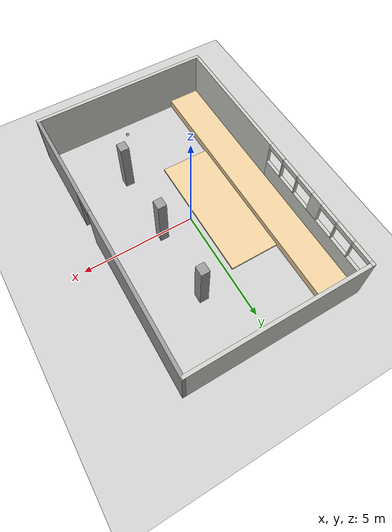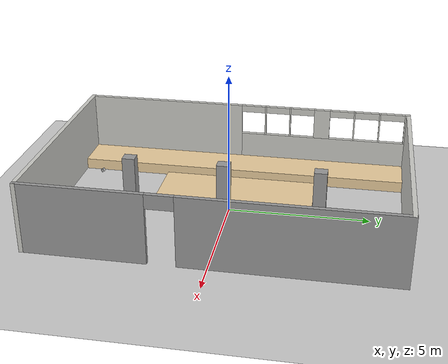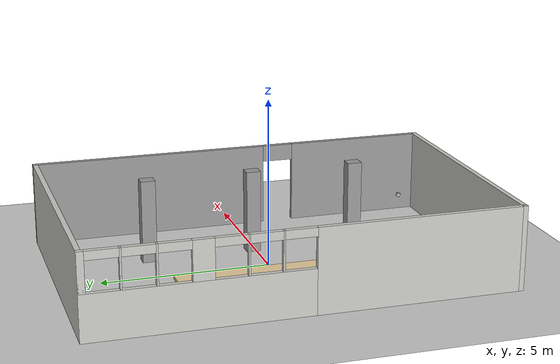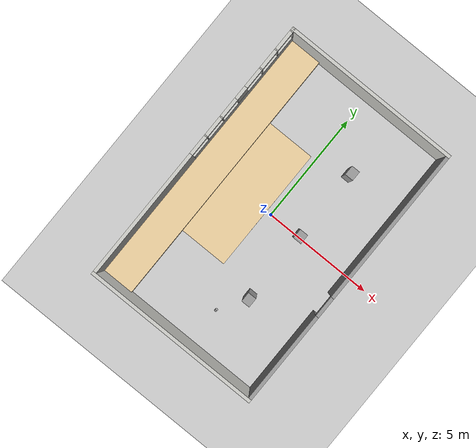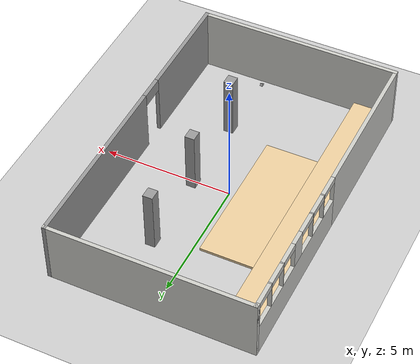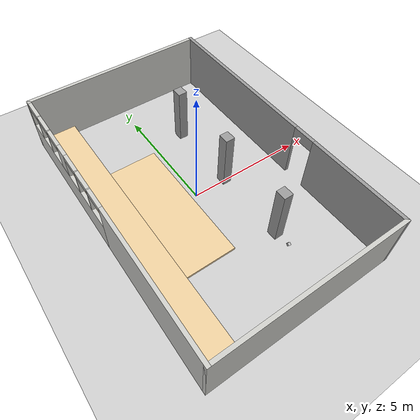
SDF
<sdf version="1.6">
 <world name="default">
  <light name="sun" type="directional">
   <pose>0 0 10 0 -0 0</pose>
   <diffuse>0.8 0.8 0.8 1</diffuse>
   <specular>0.1 0.1 0.1 1</specular>
   <attenuation>
    <range>1000</range>
    <constant>0.9</constant>
    <linear>0.01</linear>
    <quadratic>0.001</quadratic>
   </attenuation>
   <direction>-0.5 0.5 -1</direction>
  </light>
  <model name="ground_plane">
   <static>1</static>
   <link name="link">
    <collision name="collision">
     <geometry><plane><normal>0 0 1</normal><size>100 100</size></plane></geometry>
     <surface><friction><ode><mu>100</mu><mu2>50</mu2></ode></friction></surface>
    </collision>
    <visual name="visual">
     <cast_shadows>0</cast_shadows>
     <geometry><plane><normal>0 0 1</normal><size>100 100</size></plane></geometry>
     <material>
      <script><uri>file://media/materials/scripts/gazebo.material</uri><name>Gazebo/Grey</name></script>
     </material>
     <plugin name="panoramagrid" filename="libgazebo_hide_plugin.so"/>
    </visual>
   </link>
  </model>
  <gravity>0 0 -9.8</gravity>
  <magnetic_field>6e-06 2.3e-05 -4.2e-05</magnetic_field>
  <atmosphere type="adiabatic"/>
  <physics name="default_physics" default="0" type="ode">
   <max_step_size>0.001</max_step_size>
   <real_time_factor>1</real_time_factor>
   <real_time_update_rate>1000</real_time_update_rate>
  </physics>
  <scene><ambient>0.4 0.4 0.4 1</ambient><background>0.7 0.7 0.7 1</background><shadows>1</shadows></scene>
  <spherical_coordinates>
   <surface_model>EARTH_WGS84</surface_model>
   <latitude_deg>0</latitude_deg>
   <longitude_deg>0</longitude_deg>
   <elevation>0</elevation>
   <heading_deg>0</heading_deg>
  </spherical_coordinates>
  <model name="012">
   <pose>4e-06 -0 0 0 -0 1.57079</pose>
   <link name="Wall_0">
    <collision name="Wall_0_Collision">
     <geometry><box><size>8 0.15 2.5</size></box></geometry>
     <pose>0 0 1.25 0 -0 0</pose>
    </collision>
    <visual name="Wall_0_Visual">
     <pose>0 0 1.25 0 -0 0</pose>
     <geometry><box><size>8 0.15 2.5</size></box></geometry>
     <material>
      <script><uri>file://media/materials/scripts/gazebo.material</uri><name>Gazebo/CeilingTiled</name></script>
      <ambient>1 1 1 1</ambient>
     </material>
     <plugin name="panoramagrid" filename="libgazebo_hide_plugin.so"/>
    </visual>
    <pose>-6.175 0 0 0 -0 1.5708</pose>
   </link>
   <link name="Wall_1">
    <pose>0 3.925 0 0 -0 0</pose>
    <visual name="Wall_1_Visual_0">
     <pose>-3.19976 0 1.25 0 -0 0</pose>
     <geometry><box><size>6.10047 0.15 2.5</size></box></geometry>
     <material>
      <script><uri>file://media/materials/scripts/gazebo.material</uri><name>Gazebo/CeilingTiled</name></script>
      <ambient>1 1 1 1</ambient>
     </material>
     <plugin name="panoramagrid" filename="libgazebo_hide_plugin.so"/>
    </visual>
    <collision name="Wall_1_Collision_0">
     <geometry><box><size>6.10047 0.15 2.5</size></box></geometry>
     <pose>-3.19976 0 1.25 0 -0 0</pose>
    </collision>
    <visual name="Wall_1_Visual_1">
     <pose>3.05024 0 0.675 0 -0 0</pose>
     <geometry><box><size>6.39953 0.15 1.35</size></box></geometry>
     <material>
      <script><uri>file://media/materials/scripts/gazebo.material</uri><name>Gazebo/CeilingTiled</name></script>
      <ambient>1 1 1 1</ambient>
     </material>
     <plugin name="panoramagrid" filename="libgazebo_hide_plugin.so"/>
    </visual>
    <collision name="Wall_1_Collision_1">
     <geometry><box><size>6.39953 0.15 1.35</size></box></geometry>
     <pose>3.05024 0 0.675 0 -0 0</pose>
    </collision>
    <visual name="Wall_1_Visual_2">
     <pose>0.775327 0 1.925 0 -0 0</pose>
     <geometry><box><size>0.049707 0.15 1.15</size></box></geometry>
     <material>
      <script><uri>file://media/materials/scripts/gazebo.material</uri><name>Gazebo/CeilingTiled</name></script>
      <ambient>1 1 1 1</ambient>
     </material>
     <plugin name="panoramagrid" filename="libgazebo_hide_plugin.so"/>
    </visual>
    <collision name="Wall_1_Collision_2">
     <geometry><box><size>0.049707 0.15 1.15</size></box></geometry>
     <pose>0.775327 0 1.925 0 -0 0</pose>
    </collision>
    <visual name="Wall_1_Visual_3">
     <pose>1.7249 0 1.925 0 -0 0</pose>
     <geometry><box><size>0.049436 0.15 1.15</size></box></geometry>
     <material>
      <script><uri>file://media/materials/scripts/gazebo.material</uri><name>Gazebo/CeilingTiled</name></script>
      <ambient>1 1 1 1</ambient>
     </material>
     <plugin name="panoramagrid" filename="libgazebo_hide_plugin.so"/>
    </visual>
    <collision name="Wall_1_Collision_3">
     <geometry><box><size>0.049436 0.15 1.15</size></box></geometry>
     <pose>1.7249 0 1.925 0 -0 0</pose>
    </collision>
    <visual name="Wall_1_Visual_4">
     <pose>2.9496 0 1.925 0 -0 0</pose>
     <geometry><box><size>0.599959 0.15 1.15</size></box></geometry>
     <material>
      <script><uri>file://media/materials/scripts/gazebo.material</uri><name>Gazebo/CeilingTiled</name></script>
      <ambient>1 1 1 1</ambient>
     </material>
     <plugin name="panoramagrid" filename="libgazebo_hide_plugin.so"/>
    </visual>
    <collision name="Wall_1_Collision_4">
     <geometry><box><size>0.599959 0.15 1.15</size></box></geometry>
     <pose>2.9496 0 1.925 0 -0 0</pose>
    </collision>
    <visual name="Wall_1_Visual_5">
     <pose>4.17483 0 1.925 0 -0 0</pose>
     <geometry><box><size>0.050519 0.15 1.15</size></box></geometry>
     <material>
      <script><uri>file://media/materials/scripts/gazebo.material</uri><name>Gazebo/CeilingTiled</name></script>
      <ambient>1 1 1 1</ambient>
     </material>
     <plugin name="panoramagrid" filename="libgazebo_hide_plugin.so"/>
    </visual>
    <collision name="Wall_1_Collision_5">
     <geometry><box><size>0.050519 0.15 1.15</size></box></geometry>
     <pose>4.17483 0 1.925 0 -0 0</pose>
    </collision>
    <visual name="Wall_1_Visual_6">
     <pose>5.12512 0 1.925 0 -0 0</pose>
     <geometry><box><size>0.050049 0.15 1.15</size></box></geometry>
     <material>
      <script><uri>file://media/materials/scripts/gazebo.material</uri><name>Gazebo/CeilingTiled</name></script>
      <ambient>1 1 1 1</ambient>
     </material>
     <plugin name="panoramagrid" filename="libgazebo_hide_plugin.so"/>
    </visual>
    <collision name="Wall_1_Collision_6">
     <geometry><box><size>0.050049 0.15 1.15</size></box></geometry>
     <pose>5.12512 0 1.925 0 -0 0</pose>
    </collision>
    <visual name="Wall_1_Visual_7">
     <pose>6.15007 0 1.925 0 -0 0</pose>
     <geometry><box><size>0.199856 0.15 1.15</size></box></geometry>
     <material>
      <script><uri>file://media/materials/scripts/gazebo.material</uri><name>Gazebo/CeilingTiled</name></script>
      <ambient>1 1 1 1</ambient>
     </material>
     <plugin name="panoramagrid" filename="libgazebo_hide_plugin.so"/>
    </visual>
    <collision name="Wall_1_Collision_7">
     <geometry><box><size>0.199856 0.15 1.15</size></box></geometry>
     <pose>6.15007 0 1.925 0 -0 0</pose>
    </collision>
    <visual name="Wall_1_Visual_8">
     <pose>0.300473 0 2.375 0 -0 0</pose>
     <geometry><box><size>0.9 0.15 0.25</size></box></geometry>
     <material>
      <script><uri>file://media/materials/scripts/gazebo.material</uri><name>Gazebo/CeilingTiled</name></script>
      <ambient>1 1 1 1</ambient>
     </material>
     <plugin name="panoramagrid" filename="libgazebo_hide_plugin.so"/>
    </visual>
    <collision name="Wall_1_Collision_8">
     <geometry><box><size>0.9 0.15 0.25</size></box></geometry>
     <pose>0.300473 0 2.375 0 -0 0</pose>
    </collision>
    <visual name="Wall_1_Visual_9">
     <pose>1.25018 0 2.375 0 -0 0</pose>
     <geometry><box><size>0.9 0.15 0.25</size></box></geometry>
     <material>
      <script><uri>file://media/materials/scripts/gazebo.material</uri><name>Gazebo/CeilingTiled</name></script>
      <ambient>1 1 1 1</ambient>
     </material>
     <plugin name="panoramagrid" filename="libgazebo_hide_plugin.so"/>
    </visual>
    <collision name="Wall_1_Collision_9">
     <geometry><box><size>0.9 0.15 0.25</size></box></geometry>
     <pose>1.25018 0 2.375 0 -0 0</pose>
    </collision>
    <visual name="Wall_1_Visual_10">
     <pose>2.19962 0 2.375 0 -0 0</pose>
     <geometry><box><size>0.9 0.15 0.25</size></box></geometry>
     <material>
      <script><uri>file://media/materials/scripts/gazebo.material</uri><name>Gazebo/CeilingTiled</name></script>
      <ambient>1 1 1 1</ambient>
     </material>
     <plugin name="panoramagrid" filename="libgazebo_hide_plugin.so"/>
    </visual>
    <collision name="Wall_1_Collision_10">
     <geometry><box><size>0.9 0.15 0.25</size></box></geometry>
     <pose>2.19962 0 2.375 0 -0 0</pose>
    </collision>
    <visual name="Wall_1_Visual_11">
     <pose>3.69958 0 2.375 0 -0 0</pose>
     <geometry><box><size>0.9 0.15 0.25</size></box></geometry>
     <material>
      <script><uri>file://media/materials/scripts/gazebo.material</uri><name>Gazebo/CeilingTiled</name></script>
      <ambient>1 1 1 1</ambient>
     </material>
     <plugin name="panoramagrid" filename="libgazebo_hide_plugin.so"/>
    </visual>
    <collision name="Wall_1_Collision_11">
     <geometry><box><size>0.9 0.15 0.25</size></box></geometry>
     <pose>3.69958 0 2.375 0 -0 0</pose>
    </collision>
    <visual name="Wall_1_Visual_12">
     <pose>4.65009 0 2.375 0 -0 0</pose>
     <geometry><box><size>0.9 0.15 0.25</size></box></geometry>
     <material>
      <script><uri>file://media/materials/scripts/gazebo.material</uri><name>Gazebo/CeilingTiled</name></script>
      <ambient>1 1 1 1</ambient>
     </material>
     <plugin name="panoramagrid" filename="libgazebo_hide_plugin.so"/>
    </visual>
    <collision name="Wall_1_Collision_12">
     <geometry><box><size>0.9 0.15 0.25</size></box></geometry>
     <pose>4.65009 0 2.375 0 -0 0</pose>
    </collision>
    <visual name="Wall_1_Visual_13">
     <pose>5.60014 0 2.375 0 -0 0</pose>
     <geometry><box><size>0.9 0.15 0.25</size></box></geometry>
     <material>
      <script><uri>file://media/materials/scripts/gazebo.material</uri><name>Gazebo/CeilingTiled</name></script>
      <ambient>1 1 1 1</ambient>
     </material>
     <plugin name="panoramagrid" filename="libgazebo_hide_plugin.so"/>
    </visual>
    <collision name="Wall_1_Collision_13">
     <geometry><box><size>0.9 0.15 0.25</size></box></geometry>
     <pose>5.60014 0 2.375 0 -0 0</pose>
    </collision>
   </link>
   <link name="Wall_2">
    <collision name="Wall_2_Collision">
     <geometry><box><size>8 0.15 2.5</size></box></geometry>
     <pose>0 0 1.25 0 -0 0</pose>
    </collision>
    <visual name="Wall_2_Visual">
     <pose>0 0 1.25 0 -0 0</pose>
     <geometry><box><size>8 0.15 2.5</size></box></geometry>
     <material>
      <script><uri>file://media/materials/scripts/gazebo.material</uri><name>Gazebo/CeilingTiled</name></script>
      <ambient>1 1 1 1</ambient>
     </material>
     <plugin name="panoramagrid" filename="libgazebo_hide_plugin.so"/>
    </visual>
    <pose>6.175 0 0 0 0 -1.5708</pose>
   </link>
   <link name="Wall_3">
    <pose>0 -3.925 0 0 -0 3.14159</pose>
    <visual name="Wall_3_Visual_0">
     <pose>-2.6248 0 1.25 0 -0 0</pose>
     <geometry><box><size>7.25041 0.15 2.5</size></box></geometry>
     <material>
      <script><uri>file://media/materials/scripts/gazebo.material</uri><name>Gazebo/Grey</name></script>
      <ambient>1 1 1 1</ambient>
     </material>
     <plugin name="panoramagrid" filename="libgazebo_hide_plugin.so"/>
    </visual>
    <collision name="Wall_3_Collision_0">
     <geometry><box><size>7.25041 0.15 2.5</size></box></geometry>
     <pose>-2.6248 0 1.25 0 -0 0</pose>
    </collision>
    <visual name="Wall_3_Visual_1">
     <pose>4.1002 0 1.25 0 -0 0</pose>
     <geometry><box><size>4.29959 0.15 2.5</size></box></geometry>
     <material>
      <script><uri>file://media/materials/scripts/gazebo.material</uri><name>Gazebo/Grey</name></script>
      <ambient>1 1 1 1</ambient>
     </material>
     <plugin name="panoramagrid" filename="libgazebo_hide_plugin.so"/>
    </visual>
    <collision name="Wall_3_Collision_1">
     <geometry><box><size>4.29959 0.15 2.5</size></box></geometry>
     <pose>4.1002 0 1.25 0 -0 0</pose>
    </collision>
    <visual name="Wall_3_Visual_2">
     <pose>1.47541 0 2.25 0 -0 0</pose>
     <geometry><box><size>0.95 0.15 0.5</size></box></geometry>
     <material>
      <script><uri>file://media/materials/scripts/gazebo.material</uri><name>Gazebo/Grey</name></script>
      <ambient>1 1 1 1</ambient>
     </material>
     <plugin name="panoramagrid" filename="libgazebo_hide_plugin.so"/>
    </visual>
    <collision name="Wall_3_Collision_2">
     <geometry><box><size>0.95 0.15 0.5</size></box></geometry>
     <pose>1.47541 0 2.25 0 -0 0</pose>
    </collision>
   </link>
   <static>1</static>
  </model>
  <model name="012_step_back">
   <pose>-3.15276 0 0 0 -0 1.5708</pose>
   <link name="Stairs_5">
    <visual name="Stairs_5_Visual_0">
     <pose>0 0 0.2 0 -0 0</pose>
     <geometry><box><size>12.387 1.451 0.4</size></box></geometry>
     <material>
      <script><uri>file://media/materials/scripts/gazebo.material</uri><name>Gazebo/Grey</name></script>
      <ambient>0.921569 0.807843 0.615686 1</ambient>
     </material>
     <plugin name="panoramagrid" filename="libgazebo_hide_plugin.so"/>
    </visual>
    <collision name="Stairs_5_Collision_0">
     <geometry><box><size>12.387 1.451 0.4</size></box></geometry>
     <pose>0 0 0.2 0 -0 0</pose>
    </collision>
   </link>
   <static>1</static>
  </model>
  <model name="012_step_central">
   <pose>-1.40245 0.05011 0 0 -0 1.5708</pose>
   <link name="Stairs_3">
    <visual name="Stairs_3_Visual_0">
     <pose>0 0 0.05 0 -0 0</pose>
     <geometry><box><size>5.735 2.335 0.1</size></box></geometry>
     <material>
      <script><uri>file://media/materials/scripts/gazebo.material</uri><name>Gazebo/Grey</name></script>
      <ambient>0.921569 0.807843 0.615686 1</ambient>
     </material>
     <plugin name="panoramagrid" filename="libgazebo_hide_plugin.so"/>
    </visual>
    <collision name="Stairs_3_Collision_0">
     <geometry><box><size>5.735 2.335 0.1</size></box></geometry>
     <pose>0 0 0.05 0 -0 0</pose>
    </collision>
   </link>
   <static>1</static>
  </model>
  <model name="012_pillar">
   <pose>1.4352 -3.125 0 0 0 -1.5708</pose>
   <link name="Wall_6">
    <collision name="Wall_6_Collision">
     <geometry><box><size>0.43 0.38 2.5</size></box></geometry>
     <pose>0 0 1.25 0 -0 0</pose>
    </collision>
    <visual name="Wall_6_Visual">
     <pose>0 0 1.25 0 -0 0</pose>
     <geometry><box><size>0.43 0.38 2.5</size></box></geometry>
     <material>
      <script><uri>file://media/materials/scripts/gazebo.material</uri><name>Gazebo/Grey</name></script>
      <ambient>1 1 1 1</ambient>
     </material>
     <plugin name="panoramagrid" filename="libgazebo_hide_plugin.so"/>
    </visual>
   </link>
   <static>1</static>
  </model>
  <model name="012_pillar_clone">
   <pose>1.4352 0.075 0 0 0 -1.5708</pose>
   <link name="Wall_6">
    <collision name="Wall_6_Collision">
     <geometry><box><size>0.43 0.38 2.5</size></box></geometry>
     <pose>0 0 1.25 0 -0 0</pose>
    </collision>
    <visual name="Wall_6_Visual">
     <pose>0 0 1.25 0 -0 0</pose>
     <geometry><box><size>0.43 0.38 2.5</size></box></geometry>
     <material>
      <script><uri>file://media/materials/scripts/gazebo.material</uri><name>Gazebo/Grey</name></script>
      <ambient>1 1 1 1</ambient>
     </material>
     <plugin name="panoramagrid" filename="libgazebo_hide_plugin.so"/>
    </visual>
   </link>
   <static>1</static>
  </model>
  <model name="012_pillar_clone_clone">
   <pose>1.4352 3.275 0 0 0 -1.5708</pose>
   <link name="Wall_6">
    <collision name="Wall_6_Collision">
     <geometry><box><size>0.43 0.38 2.5</size></box></geometry>
     <pose>0 0 1.25 0 -0 0</pose>
    </collision>
    <visual name="Wall_6_Visual">
     <pose>0 0 1.25 0 -0 0</pose>
     <geometry><box><size>0.43 0.38 2.5</size></box></geometry>
     <material>
      <script><uri>file://media/materials/scripts/gazebo.material</uri><name>Gazebo/Grey</name></script>
      <ambient>1 1 1 1</ambient>
     </material>
     <plugin name="panoramagrid" filename="libgazebo_hide_plugin.so"/>
    </visual>
   </link>
   <static>1</static>
  </model>
  <audio><device>default</device></audio>
  <model name="static_camera">
   <static>1</static>
   <pose>0.703937 -4.339 1.55618 -0.035096 0.53693 -1.74365</pose>
   <link name="link">
    <inertial>
     <mass>0.1</mass>
     <inertia>
      <ixx>0.000166667</ixx>
      <iyy>0.000166667</iyy>
      <izz>0.000166667</izz>
      <ixy>0</ixy>
      <ixz>0</ixz>
      <iyz>0</iyz>
     </inertia>
    </inertial>
    <collision name="collision"><geometry><box><size>0.1 0.1 0.1</size></box></geometry></collision>
    <visual name="visual"><geometry><box><size>0.1 0.1 0.1</size></box></geometry></visual>
    <sensor name="camera" type="camera">
     <camera name="__default__">
      <horizontal_fov>1.047</horizontal_fov>
      <image><width>1920</width><height>1080</height></image>
      <clip><near>0.1</near><far>100</far></clip>
     </camera>
     <always_on>1</always_on>
     <update_rate>30</update_rate>
     <visualize>1</visualize>
     <plugin name="camera_controller" filename="libgazebo_ros_camera.so">
      <alwaysOn>1</alwaysOn>
      <updateRate>30.0</updateRate>
      <cameraName>gazebo_camera</cameraName>
      <imageTopicName>image_raw</imageTopicName>
      <cameraInfoTopicName>camera_info</cameraInfoTopicName>
      <frameName>camera_link</frameName>
      <hackBaseline>0.07</hackBaseline>
      <distortionK1>0.0</distortionK1>
      <distortionK2>0.0</distortionK2>
      <distortionK3>0.0</distortionK3>
      <distortionT1>0.0</distortionT1>
      <distortionT2>0.0</distortionT2>
     </plugin>
    </sensor>
   </link>
  </model>
 </world>
</sdf>
